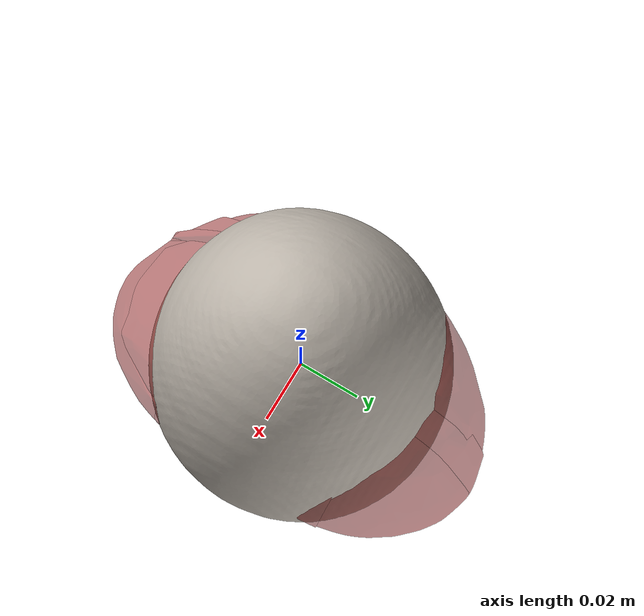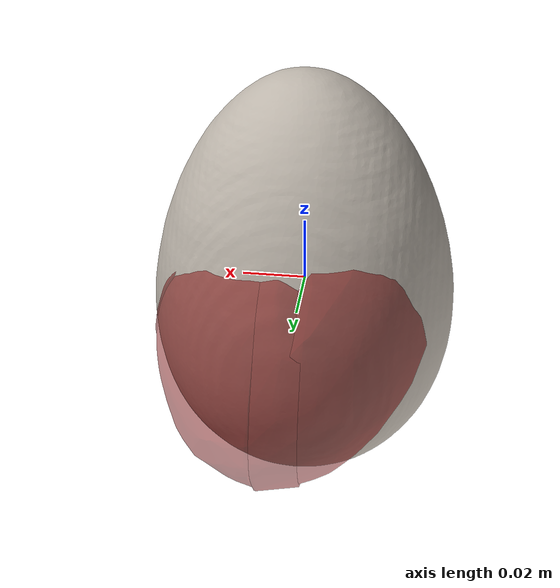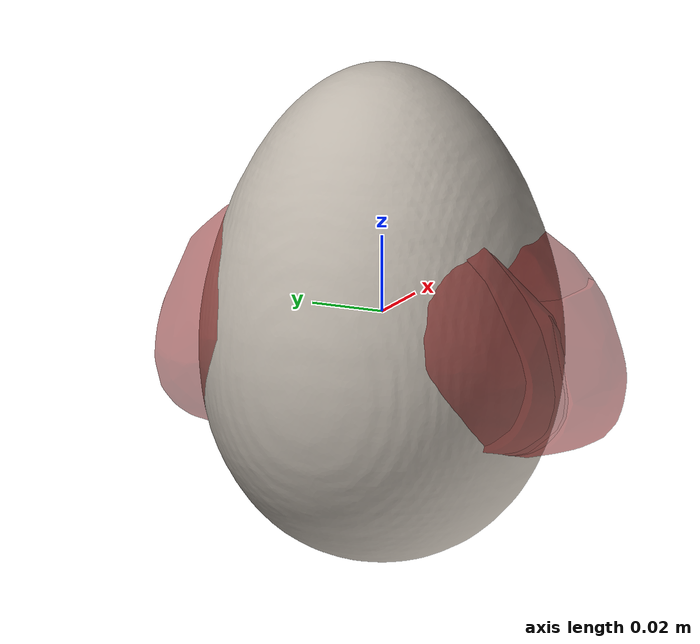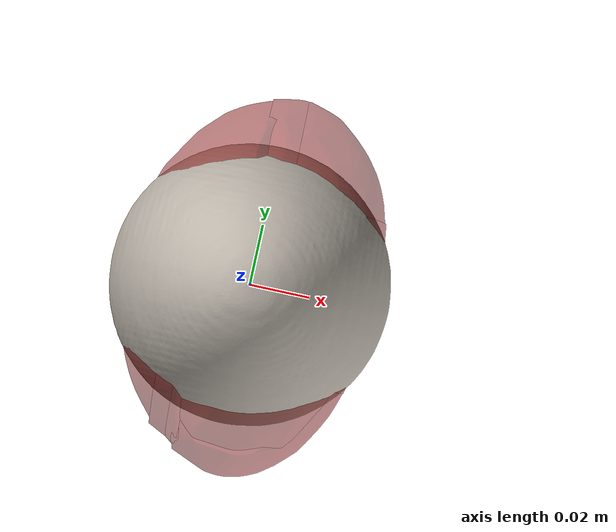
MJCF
<?xml version='1.0' encoding='utf-8'?>
<mujoco model="bread_48">
  <asset>
    <mesh file="visual/model_normalized_0.obj" name="model_normalized_0_vis" scale="0.13 0.13 0.13" refquat="0.7071067811865475 0.0 0.0 0.7071067811865476" />
    <texture type="2d" name="image0" file="visual/image0.png" />
    <material name="TextureAtlas_1001.004" texture="image0" specular="0.03" shininess="0.02" />
    <mesh file="collision/collision_mesh_collision_0.obj" name="bread_collision_mesh_0" scale="0.13 0.13 0.13" refquat="0.7071067811865475 0.0 0.0 0.7071067811865476" />
    <mesh file="collision/collision_mesh_collision_1.obj" name="bread_collision_mesh_1" scale="0.13 0.13 0.13" refquat="0.7071067811865475 0.0 0.0 0.7071067811865476" />
    <mesh file="collision/collision_mesh_collision_2.obj" name="bread_collision_mesh_2" scale="0.13 0.13 0.13" refquat="0.7071067811865475 0.0 0.0 0.7071067811865476" />
    <mesh file="collision/collision_mesh_collision_3.obj" name="bread_collision_mesh_3" scale="0.13 0.13 0.13" refquat="0.7071067811865475 0.0 0.0 0.7071067811865476" />
    <mesh file="collision/collision_mesh_collision_4.obj" name="bread_collision_mesh_4" scale="0.13 0.13 0.13" refquat="0.7071067811865475 0.0 0.0 0.7071067811865476" />
    <mesh file="collision/collision_mesh_collision_5.obj" name="bread_collision_mesh_5" scale="0.13 0.13 0.13" refquat="0.7071067811865475 0.0 0.0 0.7071067811865476" />
    <mesh file="collision/collision_mesh_collision_6.obj" name="bread_collision_mesh_6" scale="0.13 0.13 0.13" refquat="0.7071067811865475 0.0 0.0 0.7071067811865476" />
    <mesh file="collision/collision_mesh_collision_7.obj" name="bread_collision_mesh_7" scale="0.13 0.13 0.13" refquat="0.7071067811865475 0.0 0.0 0.7071067811865476" />
    <mesh file="collision/collision_mesh_collision_8.obj" name="bread_collision_mesh_8" scale="0.13 0.13 0.13" refquat="0.7071067811865475 0.0 0.0 0.7071067811865476" />
    <mesh file="collision/collision_mesh_collision_9.obj" name="bread_collision_mesh_9" scale="0.13 0.13 0.13" refquat="0.7071067811865475 0.0 0.0 0.7071067811865476" />
    <mesh file="collision/collision_mesh_collision_10.obj" name="bread_collision_mesh_10" scale="0.13 0.13 0.13" refquat="0.7071067811865475 0.0 0.0 0.7071067811865476" />
    <mesh file="collision/collision_mesh_collision_11.obj" name="bread_collision_mesh_11" scale="0.13 0.13 0.13" refquat="0.7071067811865475 0.0 0.0 0.7071067811865476" />
    <mesh file="collision/collision_mesh_collision_12.obj" name="bread_collision_mesh_12" scale="0.13 0.13 0.13" refquat="0.7071067811865475 0.0 0.0 0.7071067811865476" />
    <mesh file="collision/collision_mesh_collision_13.obj" name="bread_collision_mesh_13" scale="0.13 0.13 0.13" refquat="0.7071067811865475 0.0 0.0 0.7071067811865476" />
    <mesh file="collision/collision_mesh_collision_14.obj" name="bread_collision_mesh_14" scale="0.13 0.13 0.13" refquat="0.7071067811865475 0.0 0.0 0.7071067811865476" />
    <mesh file="collision/collision_mesh_collision_15.obj" name="bread_collision_mesh_15" scale="0.13 0.13 0.13" refquat="0.7071067811865475 0.0 0.0 0.7071067811865476" />
    </asset>
  <custom><text name="material_gt" data="bread" /></custom>
  <default>
    <default class="region">
      <geom group="1" conaffinity="0" contype="0" rgba="0 1 0 0" />
      </default>
    <default class="collision">
      <geom group="0" rgba="0.5 0 0 0.5" density="1000.0" />
      </default>
    </default>
  <worldbody>
    <body>
      <body name="object">
        <geom solimp="0.998 0.998 0.001" solref="0.001 1" density="100" friction="0.95 0.3 0.1" type="mesh" mesh="model_normalized_0_vis" conaffinity="0" contype="0" group="1" material="TextureAtlas_1001.004" />
        <geom class="region" name="reg_bbox" type="box" pos="-0.0005530713499999993 -1.843529999999899e-05 -0.0002540492499999991" size="0.040550685499999996 0.0637648141 0.03338487425" />
        <geom mesh="bread_collision_mesh_0" type="mesh" class="collision" />
        <geom mesh="bread_collision_mesh_1" type="mesh" class="collision" />
        <geom mesh="bread_collision_mesh_2" type="mesh" class="collision" />
        <geom mesh="bread_collision_mesh_3" type="mesh" class="collision" />
        <geom mesh="bread_collision_mesh_4" type="mesh" class="collision" />
        <geom mesh="bread_collision_mesh_5" type="mesh" class="collision" />
        <geom mesh="bread_collision_mesh_6" type="mesh" class="collision" />
        <geom mesh="bread_collision_mesh_7" type="mesh" class="collision" />
        <geom mesh="bread_collision_mesh_8" type="mesh" class="collision" />
        <geom mesh="bread_collision_mesh_9" type="mesh" class="collision" />
        <geom mesh="bread_collision_mesh_10" type="mesh" class="collision" />
        <geom mesh="bread_collision_mesh_11" type="mesh" class="collision" />
        <geom mesh="bread_collision_mesh_12" type="mesh" class="collision" />
        <geom mesh="bread_collision_mesh_13" type="mesh" class="collision" />
        <geom mesh="bread_collision_mesh_14" type="mesh" class="collision" />
        <geom mesh="bread_collision_mesh_15" type="mesh" class="collision" />
        </body>
      </body>
    </worldbody>
  </mujoco>
